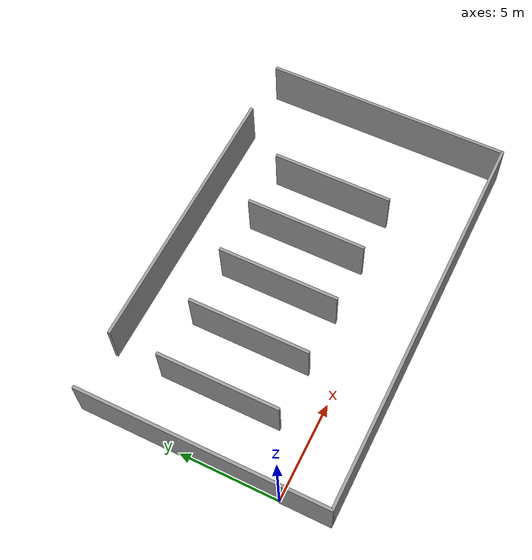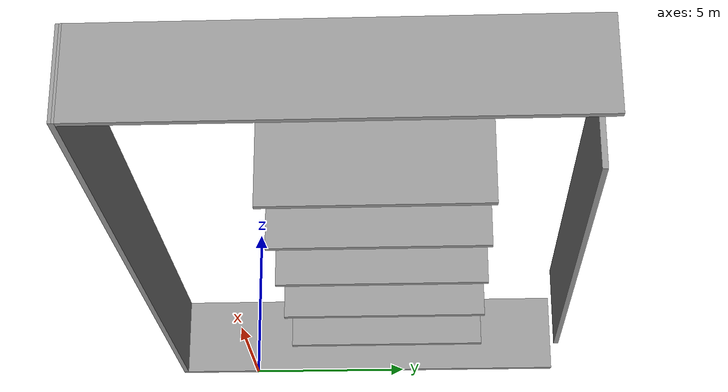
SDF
<?xml version='1.0'?>
<sdf version='1.7'>
  <model name='supermarket-walls'>
    <pose>10.0176 3.75 0 0 -0 0</pose>
    <link name='Wall_0'>
      <collision name='Wall_0_Collision'>
        <geometry>
          <box>
            <size>12.65 0.15 2.5</size>
          </box>
        </geometry>
        <pose>0 0 1.25 0 -0 0</pose>
      </collision>
      <visual name='Wall_0_Visual'>
        <pose>0 0 1.25 0 -0 0</pose>
        <geometry>
          <box>
            <size>12.65 0.15 2.5</size>
          </box>
        </geometry>
        <material>
          <script>
            <uri>file://media/materials/scripts/gazebo.material</uri>
            <name>Gazebo/Grey</name>
          </script>
          <ambient>1 1 1 1</ambient>
        </material>
        <meta>
          <layer>0</layer>
        </meta>
      </visual>
      <pose>-10.0176 0 0 0 -0 -1.5708</pose>
    </link>
    <link name='Wall_1'>
      <collision name='Wall_1_Collision'>
        <geometry>
          <box>
            <size>20.185 0.15 2.5</size>
          </box>
        </geometry>
        <pose>0 0 1.25 0 -0 0</pose>
      </collision>
      <visual name='Wall_1_Visual'>
        <pose>0 0 1.25 0 -0 0</pose>
        <geometry>
          <box>
            <size>20.185 0.15 2.5</size>
          </box>
        </geometry>
        <material>
          <script>
            <uri>file://media/materials/scripts/gazebo.material</uri>
            <name>Gazebo/Grey</name>
          </script>
          <ambient>1 1 1 1</ambient>
        </material>
        <meta>
          <layer>0</layer>
        </meta>
      </visual>
      <pose>-0.000105 -6.25 0 0 -0 0</pose>
    </link>
    <link name='Wall_10'>
      <collision name='Wall_10_Collision'>
        <geometry>
          <box>
            <size>6.15 0.15 2.5</size>
          </box>
        </geometry>
        <pose>0 0 1.25 0 -0 0</pose>
      </collision>
      <visual name='Wall_10_Visual'>
        <pose>0 0 1.25 0 -0 0</pose>
        <geometry>
          <box>
            <size>6.15 0.15 2.5</size>
          </box>
        </geometry>
        <material>
          <script>
            <uri>file://media/materials/scripts/gazebo.material</uri>
            <name>Gazebo/Grey</name>
          </script>
          <ambient>1 1 1 1</ambient>
        </material>
        <meta>
          <layer>0</layer>
        </meta>
      </visual>
      <pose>-1.01761 0.75 0 0 -0 -1.5708</pose>
    </link>
    <link name='Wall_12'>
      <collision name='Wall_12_Collision'>
        <geometry>
          <box>
            <size>6.15 0.15 2.5</size>
          </box>
        </geometry>
        <pose>0 0 1.25 0 -0 0</pose>
      </collision>
      <visual name='Wall_12_Visual'>
        <pose>0 0 1.25 0 -0 0</pose>
        <geometry>
          <box>
            <size>6.15 0.15 2.5</size>
          </box>
        </geometry>
        <material>
          <script>
            <uri>file://media/materials/scripts/gazebo.material</uri>
            <name>Gazebo/Grey</name>
          </script>
          <ambient>1 1 1 1</ambient>
        </material>
        <meta>
          <layer>0</layer>
        </meta>
      </visual>
      <pose>1.98239 0.75 0 0 -0 -1.5708</pose>
    </link>
    <link name='Wall_14'>
      <collision name='Wall_14_Collision'>
        <geometry>
          <box>
            <size>6.15 0.15 2.5</size>
          </box>
        </geometry>
        <pose>0 0 1.25 0 -0 0</pose>
      </collision>
      <visual name='Wall_14_Visual'>
        <pose>0 0 1.25 0 -0 0</pose>
        <geometry>
          <box>
            <size>6.15 0.15 2.5</size>
          </box>
        </geometry>
        <material>
          <script>
            <uri>file://media/materials/scripts/gazebo.material</uri>
            <name>Gazebo/Grey</name>
          </script>
          <ambient>1 1 1 1</ambient>
        </material>
        <meta>
          <layer>0</layer>
        </meta>
      </visual>
      <pose>4.9824 0.75 0 0 -0 -1.5708</pose>
    </link>
    <link name='Wall_2'>
      <collision name='Wall_2_Collision'>
        <geometry>
          <box>
            <size>12.65 0.15 2.5</size>
          </box>
        </geometry>
        <pose>0 0 1.25 0 -0 0</pose>
      </collision>
      <visual name='Wall_2_Visual'>
        <pose>0 0 1.25 0 -0 0</pose>
        <geometry>
          <box>
            <size>12.65 0.15 2.5</size>
          </box>
        </geometry>
        <material>
          <script>
            <uri>file://media/materials/scripts/gazebo.material</uri>
            <name>Gazebo/Grey</name>
          </script>
          <ambient>1 1 1 1</ambient>
        </material>
        <meta>
          <layer>0</layer>
        </meta>
      </visual>
      <pose>9.9999 0 0 0 -0 1.5736</pose>
    </link>
    <link name='Wall_4'>
      <collision name='Wall_4_Collision'>
        <geometry>
          <box>
            <size>14.15 0.15 2.5</size>
          </box>
        </geometry>
        <pose>0 0 1.25 0 -0 0</pose>
      </collision>
      <visual name='Wall_4_Visual'>
        <pose>0 0 1.25 0 -0 0</pose>
        <geometry>
          <box>
            <size>14.15 0.15 2.5</size>
          </box>
        </geometry>
        <material>
          <script>
            <uri>file://media/materials/scripts/gazebo.material</uri>
            <name>Gazebo/Grey</name>
          </script>
          <ambient>1 1 1 1</ambient>
        </material>
        <meta>
          <layer>0</layer>
        </meta>
      </visual>
      <pose>-0.017605 6.25 0 0 -0 3.14159</pose>
    </link>
    <link name='Wall_6'>
      <collision name='Wall_6_Collision'>
        <geometry>
          <box>
            <size>6.15 0.15 2.5</size>
          </box>
        </geometry>
        <pose>0 0 1.25 0 -0 0</pose>
      </collision>
      <visual name='Wall_6_Visual'>
        <pose>0 0 1.25 0 -0 0</pose>
        <geometry>
          <box>
            <size>6.15 0.15 2.5</size>
          </box>
        </geometry>
        <material>
          <script>
            <uri>file://media/materials/scripts/gazebo.material</uri>
            <name>Gazebo/Grey</name>
          </script>
          <ambient>1 1 1 1</ambient>
        </material>
        <meta>
          <layer>0</layer>
        </meta>
      </visual>
      <pose>-7.0176 0.75 0 0 -0 -1.5708</pose>
    </link>
    <link name='Wall_8'>
      <collision name='Wall_8_Collision'>
        <geometry>
          <box>
            <size>6.15 0.15 2.5</size>
          </box>
        </geometry>
        <pose>0 0 1.25 0 -0 0</pose>
      </collision>
      <visual name='Wall_8_Visual'>
        <pose>0 0 1.25 0 -0 0</pose>
        <geometry>
          <box>
            <size>6.15 0.15 2.5</size>
          </box>
        </geometry>
        <material>
          <script>
            <uri>file://media/materials/scripts/gazebo.material</uri>
            <name>Gazebo/Grey</name>
          </script>
          <ambient>1 1 1 1</ambient>
        </material>
        <meta>
          <layer>0</layer>
        </meta>
      </visual>
      <pose>-4.0176 0.75 0 0 -0 -1.5708</pose>
    </link>
    <static>1</static>
  </model>
</sdf>
